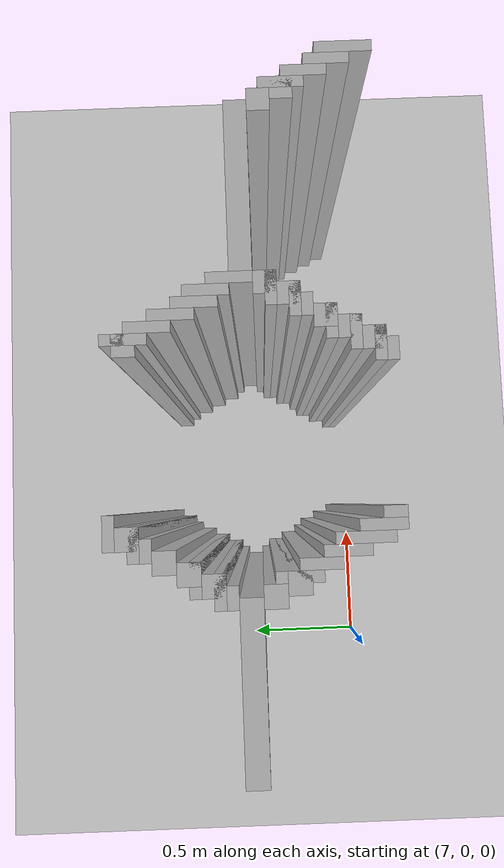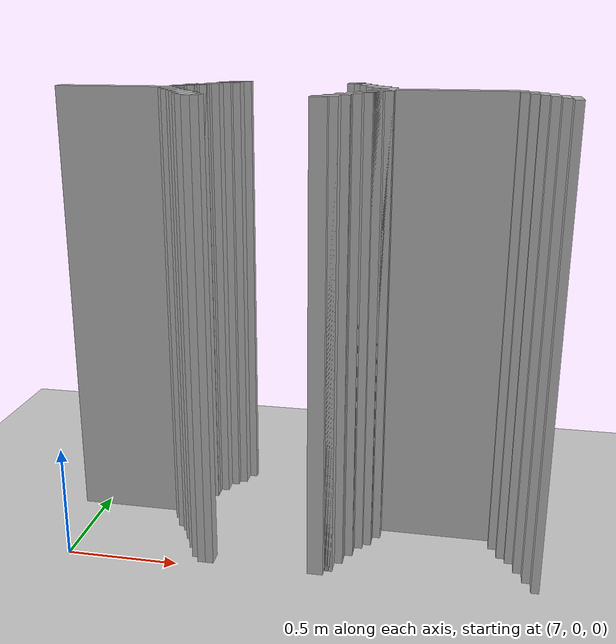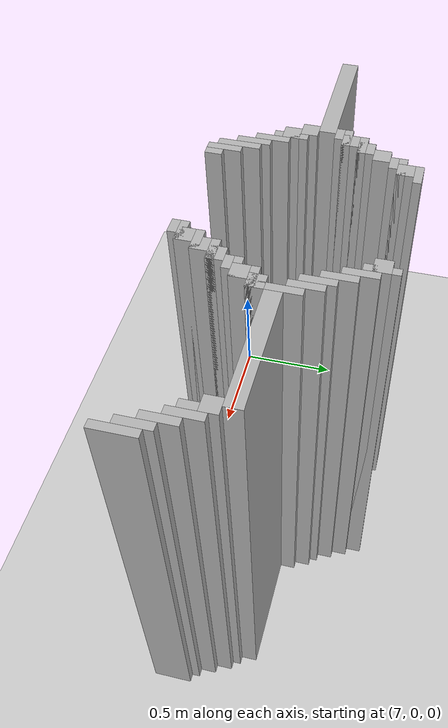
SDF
<sdf version="1.6">
 <world name="slam_world">
  <model name="ground_plane">
   <static>true</static>
   <link name="link">
    <collision name="collision">
     <geometry><plane><normal>0 0 1</normal><size>100 100</size></plane></geometry>
    </collision>
    <visual name="visual">
     <geometry><plane><normal>0 0 1</normal><size>100 100</size></plane></geometry>
     <material>
      <ambient>0.8 0.8 0.8 1</ambient>
      <diffuse>0.8 0.8 0.8 1</diffuse>
      <specular>0.8 0.8 0.8 1</specular>
     </material>
    </visual>
   </link>
  </model>
  <model name="wall_5442">
   <static>true</static>
   <pose>7.604408352668213 0.8874709976798143 1.0 0 0 0</pose>
   <link name="link">
    <collision name="collision">
     <geometry><box><size>0.10440835266821345 0.03480278422273782 2.0</size></box></geometry>
    </collision>
    <visual name="visual">
     <geometry><box><size>0.10440835266821345 0.03480278422273782 2.0</size></box></geometry>
     <material><ambient>0.5 0.5 0.5 1</ambient><diffuse>0.7 0.7 0.7 1</diffuse></material>
    </visual>
   </link>
  </model>
  <model name="wall_5443">
   <static>true</static>
   <pose>8.161252900232018 0.8352668213457076 1.0 0 0 0</pose>
   <link name="link">
    <collision name="collision">
     <geometry><box><size>0.03480278422273782 0.13921113689095127 2.0</size></box></geometry>
    </collision>
    <visual name="visual">
     <geometry><box><size>0.03480278422273782 0.13921113689095127 2.0</size></box></geometry>
     <material><ambient>0.5 0.5 0.5 1</ambient><diffuse>0.7 0.7 0.7 1</diffuse></material>
    </visual>
   </link>
  </model>
  <model name="wall_5452">
   <static>true</static>
   <pose>7.587006960556844 0.8352668213457076 1.0 0 0 0</pose>
   <link name="link">
    <collision name="collision">
     <geometry><box><size>0.06960556844547564 0.06960556844547564 2.0</size></box></geometry>
    </collision>
    <visual name="visual">
     <geometry><box><size>0.06960556844547564 0.06960556844547564 2.0</size></box></geometry>
     <material><ambient>0.5 0.5 0.5 1</ambient><diffuse>0.7 0.7 0.7 1</diffuse></material>
    </visual>
   </link>
  </model>
  <model name="wall_5453">
   <static>true</static>
   <pose>8.14385150812065 0.8352668213457076 1.0 0 0 0</pose>
   <link name="link">
    <collision name="collision">
     <geometry><box><size>0.06960556844547564 0.06960556844547564 2.0</size></box></geometry>
    </collision>
    <visual name="visual">
     <geometry><box><size>0.06960556844547564 0.06960556844547564 2.0</size></box></geometry>
     <material><ambient>0.5 0.5 0.5 1</ambient><diffuse>0.7 0.7 0.7 1</diffuse></material>
    </visual>
   </link>
  </model>
  <model name="wall_5462">
   <static>true</static>
   <pose>7.569605568445476 0.8178654292343387 1.0 0 0 0</pose>
   <link name="link">
    <collision name="collision">
     <geometry><box><size>0.10440835266821345 0.03480278422273782 2.0</size></box></geometry>
    </collision>
    <visual name="visual">
     <geometry><box><size>0.10440835266821345 0.03480278422273782 2.0</size></box></geometry>
     <material><ambient>0.5 0.5 0.5 1</ambient><diffuse>0.7 0.7 0.7 1</diffuse></material>
    </visual>
   </link>
  </model>
  <model name="wall_5463">
   <static>true</static>
   <pose>8.196055684454755 0.765661252900232 1.0 0 0 0</pose>
   <link name="link">
    <collision name="collision">
     <geometry><box><size>0.03480278422273782 0.13921113689095127 2.0</size></box></geometry>
    </collision>
    <visual name="visual">
     <geometry><box><size>0.03480278422273782 0.13921113689095127 2.0</size></box></geometry>
     <material><ambient>0.5 0.5 0.5 1</ambient><diffuse>0.7 0.7 0.7 1</diffuse></material>
    </visual>
   </link>
  </model>
  <model name="wall_5470">
   <static>true</static>
   <pose>7.552204176334106 0.7830626450116009 1.0 0 0 0</pose>
   <link name="link">
    <collision name="collision">
     <geometry><box><size>0.06960556844547564 0.03480278422273782 2.0</size></box></geometry>
    </collision>
    <visual name="visual">
     <geometry><box><size>0.06960556844547564 0.03480278422273782 2.0</size></box></geometry>
     <material><ambient>0.5 0.5 0.5 1</ambient><diffuse>0.7 0.7 0.7 1</diffuse></material>
    </visual>
   </link>
  </model>
  <model name="wall_5478">
   <static>true</static>
   <pose>7.517401392111369 0.7308584686774942 1.0 0 0 0</pose>
   <link name="link">
    <collision name="collision">
     <geometry><box><size>0.06960556844547564 0.06960556844547564 2.0</size></box></geometry>
    </collision>
    <visual name="visual">
     <geometry><box><size>0.06960556844547564 0.06960556844547564 2.0</size></box></geometry>
     <material><ambient>0.5 0.5 0.5 1</ambient><diffuse>0.7 0.7 0.7 1</diffuse></material>
    </visual>
   </link>
  </model>
  <model name="wall_5479">
   <static>true</static>
   <pose>8.230858468677495 0.6960556844547563 1.0 0 0 0</pose>
   <link name="link">
    <collision name="collision">
     <geometry><box><size>0.03480278422273782 0.13921113689095127 2.0</size></box></geometry>
    </collision>
    <visual name="visual">
     <geometry><box><size>0.03480278422273782 0.13921113689095127 2.0</size></box></geometry>
     <material><ambient>0.5 0.5 0.5 1</ambient><diffuse>0.7 0.7 0.7 1</diffuse></material>
    </visual>
   </link>
  </model>
  <model name="wall_5488">
   <static>true</static>
   <pose>7.48259860788863 0.6612529002320185 1.0 0 0 0</pose>
   <link name="link">
    <collision name="collision">
     <geometry><box><size>0.06960556844547564 0.06960556844547564 2.0</size></box></geometry>
    </collision>
    <visual name="visual">
     <geometry><box><size>0.06960556844547564 0.06960556844547564 2.0</size></box></geometry>
     <material><ambient>0.5 0.5 0.5 1</ambient><diffuse>0.7 0.7 0.7 1</diffuse></material>
    </visual>
   </link>
  </model>
  <model name="wall_5489">
   <static>true</static>
   <pose>8.265661252900232 0.6264501160092807 1.0 0 0 0</pose>
   <link name="link">
    <collision name="collision">
     <geometry><box><size>0.03480278422273782 0.13921113689095127 2.0</size></box></geometry>
    </collision>
    <visual name="visual">
     <geometry><box><size>0.03480278422273782 0.13921113689095127 2.0</size></box></geometry>
     <material><ambient>0.5 0.5 0.5 1</ambient><diffuse>0.7 0.7 0.7 1</diffuse></material>
    </visual>
   </link>
  </model>
  <model name="wall_5498">
   <static>true</static>
   <pose>7.465197215777262 0.6438515081206496 1.0 0 0 0</pose>
   <link name="link">
    <collision name="collision">
     <geometry><box><size>0.10440835266821345 0.03480278422273782 2.0</size></box></geometry>
    </collision>
    <visual name="visual">
     <geometry><box><size>0.10440835266821345 0.03480278422273782 2.0</size></box></geometry>
     <material><ambient>0.5 0.5 0.5 1</ambient><diffuse>0.7 0.7 0.7 1</diffuse></material>
    </visual>
   </link>
  </model>
  <model name="wall_5499">
   <static>true</static>
   <pose>8.30046403712297 0.5916473317865429 1.0 0 0 0</pose>
   <link name="link">
    <collision name="collision">
     <geometry><box><size>0.03480278422273782 0.13921113689095127 2.0</size></box></geometry>
    </collision>
    <visual name="visual">
     <geometry><box><size>0.03480278422273782 0.13921113689095127 2.0</size></box></geometry>
     <material><ambient>0.5 0.5 0.5 1</ambient><diffuse>0.7 0.7 0.7 1</diffuse></material>
    </visual>
   </link>
  </model>
  <model name="wall_5506">
   <static>true</static>
   <pose>7.447795823665893 0.5916473317865429 1.0 0 0 0</pose>
   <link name="link">
    <collision name="collision">
     <geometry><box><size>0.06960556844547564 0.06960556844547564 2.0</size></box></geometry>
    </collision>
    <visual name="visual">
     <geometry><box><size>0.06960556844547564 0.06960556844547564 2.0</size></box></geometry>
     <material><ambient>0.5 0.5 0.5 1</ambient><diffuse>0.7 0.7 0.7 1</diffuse></material>
    </visual>
   </link>
  </model>
  <model name="wall_5514">
   <static>true</static>
   <pose>7.430394431554524 0.574245939675174 1.0 0 0 0</pose>
   <link name="link">
    <collision name="collision">
     <geometry><box><size>0.10440835266821345 0.03480278422273782 2.0</size></box></geometry>
    </collision>
    <visual name="visual">
     <geometry><box><size>0.10440835266821345 0.03480278422273782 2.0</size></box></geometry>
     <material><ambient>0.5 0.5 0.5 1</ambient><diffuse>0.7 0.7 0.7 1</diffuse></material>
    </visual>
   </link>
  </model>
  <model name="wall_5515">
   <static>true</static>
   <pose>8.335266821345707 0.4872389791183295 1.0 0 0 0</pose>
   <link name="link">
    <collision name="collision">
     <geometry><box><size>0.03480278422273782 0.2088167053364269 2.0</size></box></geometry>
    </collision>
    <visual name="visual">
     <geometry><box><size>0.03480278422273782 0.2088167053364269 2.0</size></box></geometry>
     <material><ambient>0.5 0.5 0.5 1</ambient><diffuse>0.7 0.7 0.7 1</diffuse></material>
    </visual>
   </link>
  </model>
  <model name="wall_5522">
   <static>true</static>
   <pose>7.412993039443156 0.5394431554524362 1.0 0 0 0</pose>
   <link name="link">
    <collision name="collision">
     <geometry><box><size>0.06960556844547564 0.03480278422273782 2.0</size></box></geometry>
    </collision>
    <visual name="visual">
     <geometry><box><size>0.06960556844547564 0.03480278422273782 2.0</size></box></geometry>
     <material><ambient>0.5 0.5 0.5 1</ambient><diffuse>0.7 0.7 0.7 1</diffuse></material>
    </visual>
   </link>
  </model>
  <model name="wall_5530">
   <static>true</static>
   <pose>7.151972157772621 0.4872389791183295 1.0 0 0 0</pose>
   <link name="link">
    <collision name="collision">
     <geometry><box><size>0.5220417633410672 0.06960556844547564 2.0</size></box></geometry>
    </collision>
    <visual name="visual">
     <geometry><box><size>0.5220417633410672 0.06960556844547564 2.0</size></box></geometry>
     <material><ambient>0.5 0.5 0.5 1</ambient><diffuse>0.7 0.7 0.7 1</diffuse></material>
    </visual>
   </link>
  </model>
  <model name="wall_5531">
   <static>true</static>
   <pose>8.61368909512761 0.4872389791183295 1.0 0 0 0</pose>
   <link name="link">
    <collision name="collision">
     <geometry><box><size>0.5220417633410672 0.06960556844547564 2.0</size></box></geometry>
    </collision>
    <visual name="visual">
     <geometry><box><size>0.5220417633410672 0.06960556844547564 2.0</size></box></geometry>
     <material><ambient>0.5 0.5 0.5 1</ambient><diffuse>0.7 0.7 0.7 1</diffuse></material>
    </visual>
   </link>
  </model>
  <model name="wall_5546">
   <static>true</static>
   <pose>7.412993039443156 0.4176334106728538 1.0 0 0 0</pose>
   <link name="link">
    <collision name="collision">
     <geometry><box><size>0.06960556844547564 0.06960556844547564 2.0</size></box></geometry>
    </collision>
    <visual name="visual">
     <geometry><box><size>0.06960556844547564 0.06960556844547564 2.0</size></box></geometry>
     <material><ambient>0.5 0.5 0.5 1</ambient><diffuse>0.7 0.7 0.7 1</diffuse></material>
    </visual>
   </link>
  </model>
  <model name="wall_5547">
   <static>true</static>
   <pose>8.317865429234338 0.4176334106728538 1.0 0 0 0</pose>
   <link name="link">
    <collision name="collision">
     <geometry><box><size>0.06960556844547564 0.06960556844547564 2.0</size></box></geometry>
    </collision>
    <visual name="visual">
     <geometry><box><size>0.06960556844547564 0.06960556844547564 2.0</size></box></geometry>
     <material><ambient>0.5 0.5 0.5 1</ambient><diffuse>0.7 0.7 0.7 1</diffuse></material>
    </visual>
   </link>
  </model>
  <model name="wall_5548">
   <static>true</static>
   <pose>8.874709976798144 0.4176334106728538 1.0 0 0 0</pose>
   <link name="link">
    <collision name="collision">
     <geometry><box><size>0.06960556844547564 0.06960556844547564 2.0</size></box></geometry>
    </collision>
    <visual name="visual">
     <geometry><box><size>0.06960556844547564 0.06960556844547564 2.0</size></box></geometry>
     <material><ambient>0.5 0.5 0.5 1</ambient><diffuse>0.7 0.7 0.7 1</diffuse></material>
    </visual>
   </link>
  </model>
  <model name="wall_5566">
   <static>true</static>
   <pose>7.465197215777262 0.34802784222737815 1.0 0 0 0</pose>
   <link name="link">
    <collision name="collision">
     <geometry><box><size>0.03480278422273782 0.13921113689095127 2.0</size></box></geometry>
    </collision>
    <visual name="visual">
     <geometry><box><size>0.03480278422273782 0.13921113689095127 2.0</size></box></geometry>
     <material><ambient>0.5 0.5 0.5 1</ambient><diffuse>0.7 0.7 0.7 1</diffuse></material>
    </visual>
   </link>
  </model>
  <model name="wall_5567">
   <static>true</static>
   <pose>8.30046403712297 0.4002320185614849 1.0 0 0 0</pose>
   <link name="link">
    <collision name="collision">
     <geometry><box><size>0.10440835266821345 0.03480278422273782 2.0</size></box></geometry>
    </collision>
    <visual name="visual">
     <geometry><box><size>0.10440835266821345 0.03480278422273782 2.0</size></box></geometry>
     <material><ambient>0.5 0.5 0.5 1</ambient><diffuse>0.7 0.7 0.7 1</diffuse></material>
    </visual>
   </link>
  </model>
  <model name="wall_5568">
   <static>true</static>
   <pose>8.92691415313225 0.34802784222737815 1.0 0 0 0</pose>
   <link name="link">
    <collision name="collision">
     <geometry><box><size>0.03480278422273782 0.13921113689095127 2.0</size></box></geometry>
    </collision>
    <visual name="visual">
     <geometry><box><size>0.03480278422273782 0.13921113689095127 2.0</size></box></geometry>
     <material><ambient>0.5 0.5 0.5 1</ambient><diffuse>0.7 0.7 0.7 1</diffuse></material>
    </visual>
   </link>
  </model>
  <model name="wall_5586">
   <static>true</static>
   <pose>7.447795823665893 0.34802784222737815 1.0 0 0 0</pose>
   <link name="link">
    <collision name="collision">
     <geometry><box><size>0.06960556844547564 0.06960556844547564 2.0</size></box></geometry>
    </collision>
    <visual name="visual">
     <geometry><box><size>0.06960556844547564 0.06960556844547564 2.0</size></box></geometry>
     <material><ambient>0.5 0.5 0.5 1</ambient><diffuse>0.7 0.7 0.7 1</diffuse></material>
    </visual>
   </link>
  </model>
  <model name="wall_5587">
   <static>true</static>
   <pose>8.2830626450116 0.34802784222737815 1.0 0 0 0</pose>
   <link name="link">
    <collision name="collision">
     <geometry><box><size>0.06960556844547564 0.06960556844547564 2.0</size></box></geometry>
    </collision>
    <visual name="visual">
     <geometry><box><size>0.06960556844547564 0.06960556844547564 2.0</size></box></geometry>
     <material><ambient>0.5 0.5 0.5 1</ambient><diffuse>0.7 0.7 0.7 1</diffuse></material>
    </visual>
   </link>
  </model>
  <model name="wall_5588">
   <static>true</static>
   <pose>8.909512761020881 0.34802784222737815 1.0 0 0 0</pose>
   <link name="link">
    <collision name="collision">
     <geometry><box><size>0.06960556844547564 0.06960556844547564 2.0</size></box></geometry>
    </collision>
    <visual name="visual">
     <geometry><box><size>0.06960556844547564 0.06960556844547564 2.0</size></box></geometry>
     <material><ambient>0.5 0.5 0.5 1</ambient><diffuse>0.7 0.7 0.7 1</diffuse></material>
    </visual>
   </link>
  </model>
  <model name="wall_5606">
   <static>true</static>
   <pose>7.5 0.27842227378190254 1.0 0 0 0</pose>
   <link name="link">
    <collision name="collision">
     <geometry><box><size>0.03480278422273782 0.13921113689095127 2.0</size></box></geometry>
    </collision>
    <visual name="visual">
     <geometry><box><size>0.03480278422273782 0.13921113689095127 2.0</size></box></geometry>
     <material><ambient>0.5 0.5 0.5 1</ambient><diffuse>0.7 0.7 0.7 1</diffuse></material>
    </visual>
   </link>
  </model>
  <model name="wall_5607">
   <static>true</static>
   <pose>8.265661252900232 0.3306264501160093 1.0 0 0 0</pose>
   <link name="link">
    <collision name="collision">
     <geometry><box><size>0.10440835266821345 0.03480278422273782 2.0</size></box></geometry>
    </collision>
    <visual name="visual">
     <geometry><box><size>0.10440835266821345 0.03480278422273782 2.0</size></box></geometry>
     <material><ambient>0.5 0.5 0.5 1</ambient><diffuse>0.7 0.7 0.7 1</diffuse></material>
    </visual>
   </link>
  </model>
  <model name="wall_5608">
   <static>true</static>
   <pose>8.961716937354987 0.27842227378190254 1.0 0 0 0</pose>
   <link name="link">
    <collision name="collision">
     <geometry><box><size>0.03480278422273782 0.13921113689095127 2.0</size></box></geometry>
    </collision>
    <visual name="visual">
     <geometry><box><size>0.03480278422273782 0.13921113689095127 2.0</size></box></geometry>
     <material><ambient>0.5 0.5 0.5 1</ambient><diffuse>0.7 0.7 0.7 1</diffuse></material>
    </visual>
   </link>
  </model>
  <model name="wall_5621">
   <static>true</static>
   <pose>8.248259860788863 0.29582366589327147 1.0 0 0 0</pose>
   <link name="link">
    <collision name="collision">
     <geometry><box><size>0.06960556844547564 0.03480278422273782 2.0</size></box></geometry>
    </collision>
    <visual name="visual">
     <geometry><box><size>0.06960556844547564 0.03480278422273782 2.0</size></box></geometry>
     <material><ambient>0.5 0.5 0.5 1</ambient><diffuse>0.7 0.7 0.7 1</diffuse></material>
    </visual>
   </link>
  </model>
  <model name="wall_5636">
   <static>true</static>
   <pose>7.534802784222737 0.2088167053364269 1.0 0 0 0</pose>
   <link name="link">
    <collision name="collision">
     <geometry><box><size>0.03480278422273782 0.13921113689095127 2.0</size></box></geometry>
    </collision>
    <visual name="visual">
     <geometry><box><size>0.03480278422273782 0.13921113689095127 2.0</size></box></geometry>
     <material><ambient>0.5 0.5 0.5 1</ambient><diffuse>0.7 0.7 0.7 1</diffuse></material>
    </visual>
   </link>
  </model>
  <model name="wall_5637">
   <static>true</static>
   <pose>8.213457076566124 0.24361948955916474 1.0 0 0 0</pose>
   <link name="link">
    <collision name="collision">
     <geometry><box><size>0.06960556844547564 0.06960556844547564 2.0</size></box></geometry>
    </collision>
    <visual name="visual">
     <geometry><box><size>0.06960556844547564 0.06960556844547564 2.0</size></box></geometry>
     <material><ambient>0.5 0.5 0.5 1</ambient><diffuse>0.7 0.7 0.7 1</diffuse></material>
    </visual>
   </link>
  </model>
  <model name="wall_5638">
   <static>true</static>
   <pose>8.996519721577727 0.2088167053364269 1.0 0 0 0</pose>
   <link name="link">
    <collision name="collision">
     <geometry><box><size>0.03480278422273782 0.13921113689095127 2.0</size></box></geometry>
    </collision>
    <visual name="visual">
     <geometry><box><size>0.03480278422273782 0.13921113689095127 2.0</size></box></geometry>
     <material><ambient>0.5 0.5 0.5 1</ambient><diffuse>0.7 0.7 0.7 1</diffuse></material>
    </visual>
   </link>
  </model>
  <model name="wall_5656">
   <static>true</static>
   <pose>7.569605568445476 0.15661252900232017 1.0 0 0 0</pose>
   <link name="link">
    <collision name="collision">
     <geometry><box><size>0.03480278422273782 0.17401392111368907 2.0</size></box></geometry>
    </collision>
    <visual name="visual">
     <geometry><box><size>0.03480278422273782 0.17401392111368907 2.0</size></box></geometry>
     <material><ambient>0.5 0.5 0.5 1</ambient><diffuse>0.7 0.7 0.7 1</diffuse></material>
    </visual>
   </link>
  </model>
  <model name="wall_5657">
   <static>true</static>
   <pose>8.196055684454755 0.2262180974477958 1.0 0 0 0</pose>
   <link name="link">
    <collision name="collision">
     <geometry><box><size>0.10440835266821345 0.03480278422273782 2.0</size></box></geometry>
    </collision>
    <visual name="visual">
     <geometry><box><size>0.10440835266821345 0.03480278422273782 2.0</size></box></geometry>
     <material><ambient>0.5 0.5 0.5 1</ambient><diffuse>0.7 0.7 0.7 1</diffuse></material>
    </visual>
   </link>
  </model>
  <model name="wall_5658">
   <static>true</static>
   <pose>9.031322505800464 0.15661252900232017 1.0 0 0 0</pose>
   <link name="link">
    <collision name="collision">
     <geometry><box><size>0.03480278422273782 0.17401392111368907 2.0</size></box></geometry>
    </collision>
    <visual name="visual">
     <geometry><box><size>0.03480278422273782 0.17401392111368907 2.0</size></box></geometry>
     <material><ambient>0.5 0.5 0.5 1</ambient><diffuse>0.7 0.7 0.7 1</diffuse></material>
    </visual>
   </link>
  </model>
  <model name="wall_5671">
   <static>true</static>
   <pose>8.178654292343387 0.17401392111368907 1.0 0 0 0</pose>
   <link name="link">
    <collision name="collision">
     <geometry><box><size>0.06960556844547564 0.06960556844547564 2.0</size></box></geometry>
    </collision>
    <visual name="visual">
     <geometry><box><size>0.06960556844547564 0.06960556844547564 2.0</size></box></geometry>
     <material><ambient>0.5 0.5 0.5 1</ambient><diffuse>0.7 0.7 0.7 1</diffuse></material>
    </visual>
   </link>
  </model>
  <model name="wall_5686">
   <static>true</static>
   <pose>7.604408352668213 0.10440835266821345 1.0 0 0 0</pose>
   <link name="link">
    <collision name="collision">
     <geometry><box><size>0.03480278422273782 0.13921113689095127 2.0</size></box></geometry>
    </collision>
    <visual name="visual">
     <geometry><box><size>0.03480278422273782 0.13921113689095127 2.0</size></box></geometry>
     <material><ambient>0.5 0.5 0.5 1</ambient><diffuse>0.7 0.7 0.7 1</diffuse></material>
    </visual>
   </link>
  </model>
  <model name="wall_5687">
   <static>true</static>
   <pose>8.161252900232018 0.15661252900232017 1.0 0 0 0</pose>
   <link name="link">
    <collision name="collision">
     <geometry><box><size>0.10440835266821345 0.03480278422273782 2.0</size></box></geometry>
    </collision>
    <visual name="visual">
     <geometry><box><size>0.10440835266821345 0.03480278422273782 2.0</size></box></geometry>
     <material><ambient>0.5 0.5 0.5 1</ambient><diffuse>0.7 0.7 0.7 1</diffuse></material>
    </visual>
   </link>
  </model>
  <model name="wall_5701">
   <static>true</static>
   <pose>8.14385150812065 0.10440835266821345 1.0 0 0 0</pose>
   <link name="link">
    <collision name="collision">
     <geometry><box><size>0.06960556844547564 0.06960556844547564 2.0</size></box></geometry>
    </collision>
    <visual name="visual">
     <geometry><box><size>0.06960556844547564 0.06960556844547564 2.0</size></box></geometry>
     <material><ambient>0.5 0.5 0.5 1</ambient><diffuse>0.7 0.7 0.7 1</diffuse></material>
    </visual>
   </link>
  </model>
  <model name="wall_5711">
   <static>true</static>
   <pose>7.6392111368909505 0.06960556844547564 1.0 0 0 0</pose>
   <link name="link">
    <collision name="collision">
     <geometry><box><size>0.03480278422273782 0.06960556844547564 2.0</size></box></geometry>
    </collision>
    <visual name="visual">
     <geometry><box><size>0.03480278422273782 0.06960556844547564 2.0</size></box></geometry>
     <material><ambient>0.5 0.5 0.5 1</ambient><diffuse>0.7 0.7 0.7 1</diffuse></material>
    </visual>
   </link>
  </model>
  <model name="wall_5712">
   <static>true</static>
   <pose>8.12645011600928 0.08700696055684454 1.0 0 0 0</pose>
   <link name="link">
    <collision name="collision">
     <geometry><box><size>0.10440835266821345 0.03480278422273782 2.0</size></box></geometry>
    </collision>
    <visual name="visual">
     <geometry><box><size>0.10440835266821345 0.03480278422273782 2.0</size></box></geometry>
     <material><ambient>0.5 0.5 0.5 1</ambient><diffuse>0.7 0.7 0.7 1</diffuse></material>
    </visual>
   </link>
  </model>
  <model name="wall_5722">
   <static>true</static>
   <pose>8.109048723897912 0.052204176334106726 1.0 0 0 0</pose>
   <link name="link">
    <collision name="collision">
     <geometry><box><size>0.06960556844547564 0.03480278422273782 2.0</size></box></geometry>
    </collision>
    <visual name="visual">
     <geometry><box><size>0.06960556844547564 0.03480278422273782 2.0</size></box></geometry>
     <material><ambient>0.5 0.5 0.5 1</ambient><diffuse>0.7 0.7 0.7 1</diffuse></material>
    </visual>
   </link>
  </model>
 </world>
</sdf>
